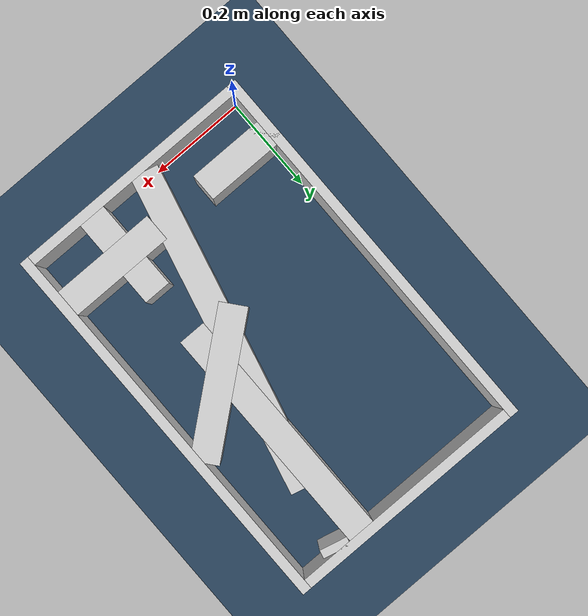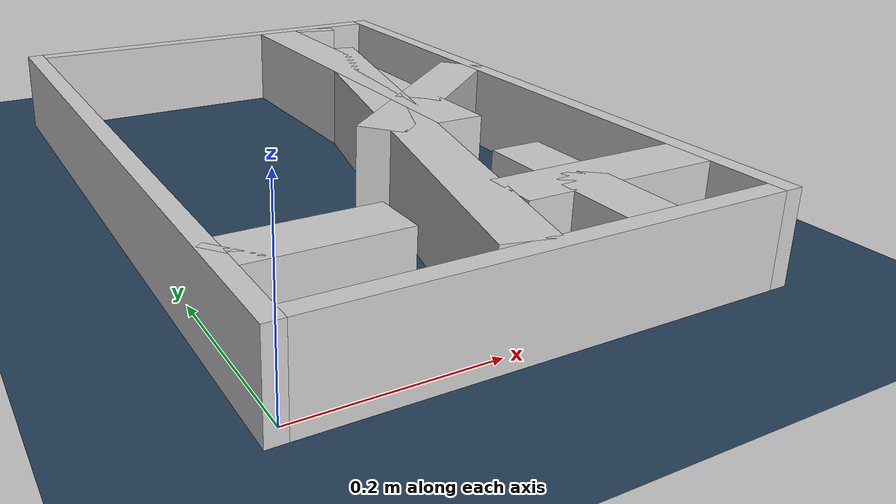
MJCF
<?xml version="1.0" ?>
<mujoco model="generated_real_template">
  <compiler angle="degree"/>
  <option timestep="0.002" integrator="implicitfast" iterations="100" cone="elliptic"/>
  <default>
    <geom density="1"/>
  </default>
  <asset>
    <texture builtin="gradient" height="3072" rgb1="0.3 0.5 0.7" rgb2="0 0 0" type="skybox" width="512"/>
    <texture builtin="checker" height="300" mark="edge" markrgb="0.8 0.8 0.8" name="groundplane" rgb1="0.2 0.3 0.4" rgb2="0.1 0.2 0.3" type="2d" width="300"/>
    <material name="groundplane" reflectance="0.2" texrepeat="5 5" texture="groundplane" texuniform="true"/>
  </asset>
  <worldbody>
    <light dir="0 0 -1" directional="true" pos="0 0 1.5"/>
    <geom name="floor" type="plane" condim="4" friction="0.5 0.005 0.001" material="groundplane" size="0 0 0.05"/>
    <body name="walls">
      <geom name="wall_boundary_left" type="box" condim="4" friction="1.0 0.005 0.0001" rgba="0.8 0.8 0.8 1" pos="-0.010000 0.387500 0.050000" euler="0 0 0.000000" size="0.010000 0.407500 0.050000"/>
      <geom name="wall_boundary_right" type="box" condim="4" friction="1.0 0.005 0.0001" rgba="0.8 0.8 0.8 1" pos="0.500000 0.387500 0.050000" euler="0 0 0.000000" size="0.010000 0.407500 0.050000"/>
      <geom name="wall_boundary_bottom" type="box" condim="4" friction="1.0 0.005 0.0001" rgba="0.8 0.8 0.8 1" pos="0.245000 -0.010000 0.050000" euler="0 0 0.000000" size="0.245000 0.010000 0.050000"/>
      <geom name="wall_boundary_top" type="box" condim="4" friction="1.0 0.005 0.0001" rgba="0.8 0.8 0.8 1" pos="0.245000 0.785000 0.050000" euler="0 0 0.000000" size="0.245000 0.010000 0.050000"/>
      <geom name="wall_inner_1_1" type="box" condim="4" friction="1.0 0.005 0.0001" rgba="0.8 0.8 0.8 1" pos="0.078469 0.095051 0.050000" euler="0 0 0.000000" size="0.078469 0.028500 0.050000"/>
      <geom name="wall_inner_1_2" type="box" condim="4" friction="1.0 0.005 0.0001" rgba="0.8 0.8 0.8 1" pos="0.380243 0.095051 0.050000" euler="0 0 0.000000" size="0.109757 0.028500 0.050000"/>
      <geom name="wall_inner_2_1" type="box" condim="4" friction="1.0 0.005 0.0001" rgba="0.8 0.8 0.8 1" pos="0.372508 0.392551 0.050000" euler="0 0 -140.848415" size="0.151509 0.028500 0.050000"/>
      <geom name="wall_inner_2_2" type="box" condim="4" friction="1.0 0.005 0.0001" rgba="0.8 0.8 0.8 1" pos="0.003562 0.092164 0.050000" euler="0 0 -140.848415" size="0.004593 0.028500 0.050000"/>
      <geom name="wall_inner_3_1" type="box" condim="4" friction="1.0 0.005 0.0001" rgba="0.8 0.8 0.8 1" pos="0.349451 0.094330 0.050000" euler="0 0 90.000000" size="0.094330 0.028500 0.050000"/>
      <geom name="wall_inner_3_2" type="box" condim="4" friction="1.0 0.005 0.0001" rgba="0.8 0.8 0.8 1" pos="0.349451 0.530999 0.050000" euler="0 0 90.000000" size="0.244001 0.028500 0.050000"/>
      <geom name="wall_inner_4_1" type="box" condim="4" friction="1.0 0.005 0.0001" rgba="0.8 0.8 0.8 1" pos="0.299613 0.322683 0.050000" euler="0 0 76.393328" size="0.332001 0.028500 0.050000"/>
      <geom name="wall_inner_4_2" type="box" condim="4" friction="1.0 0.005 0.0001" rgba="0.8 0.8 0.8 1" pos="0.407087 0.766702 0.050000" euler="0 0 76.393328" size="0.008538 0.028500 0.050000"/>
    </body>
  </worldbody>
</mujoco>
